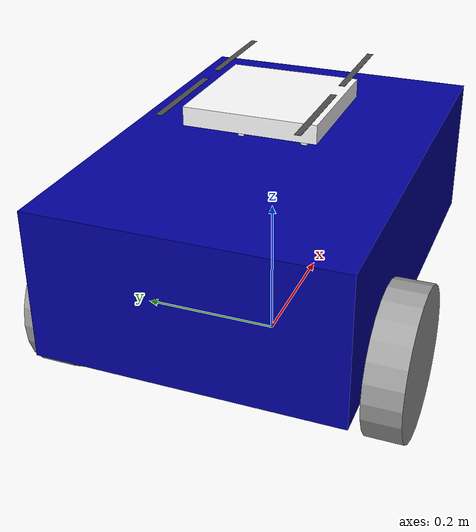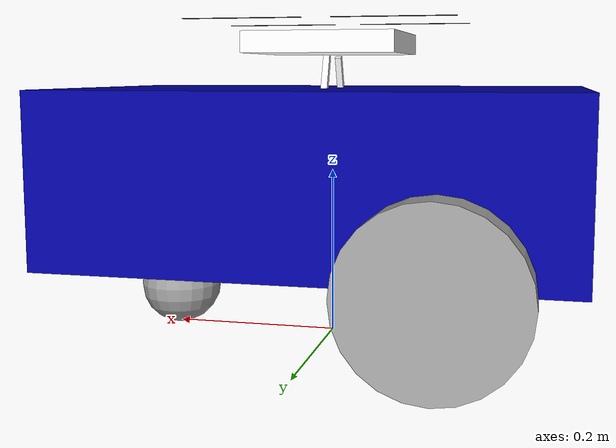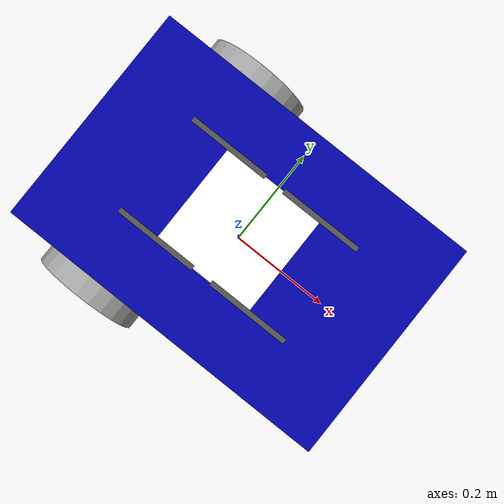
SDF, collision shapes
<?xml version="1.0"?>
<sdf version='1.9'>
  <model name='flight_robot'>

    <include merge='true'>
      <uri>model://x500_base</uri>
      <pose>0 0 0.35 0 0 0</pose>
    </include>

    <plugin filename="gz-sim-multicopter-motor-model-system" name="gz::sim::systems::MulticopterMotorModel">
      <jointName>rotor_0_joint</jointName>
      <linkName>rotor_0</linkName>
      <turningDirection>ccw</turningDirection>
      <timeConstantUp>0.0125</timeConstantUp>
      <timeConstantDown>0.025</timeConstantDown>
      <maxRotVelocity>1000.0</maxRotVelocity>
      <motorConstant>2.0e-05</motorConstant>
      <momentConstant>0.016</momentConstant>
      <commandSubTopic>command/motor_speed</commandSubTopic>
      <motorNumber>0</motorNumber>
      <rotorDragCoefficient>8.06428e-05</rotorDragCoefficient>
      <rollingMomentCoefficient>1e-06</rollingMomentCoefficient>
      <rotorVelocitySlowdownSim>10</rotorVelocitySlowdownSim>
      <motorType>velocity</motorType>
    </plugin>
    <plugin filename="gz-sim-multicopter-motor-model-system" name="gz::sim::systems::MulticopterMotorModel">
      <jointName>rotor_1_joint</jointName>
      <linkName>rotor_1</linkName>
      <turningDirection>ccw</turningDirection>
      <timeConstantUp>0.0125</timeConstantUp>
      <timeConstantDown>0.025</timeConstantDown>
      <maxRotVelocity>1000.0</maxRotVelocity>
      <motorConstant>2.0e-05</motorConstant>
      <momentConstant>0.016</momentConstant>
      <commandSubTopic>command/motor_speed</commandSubTopic>
      <motorNumber>1</motorNumber>
      <rotorDragCoefficient>8.06428e-05</rotorDragCoefficient>
      <rollingMomentCoefficient>1e-06</rollingMomentCoefficient>
      <rotorVelocitySlowdownSim>10</rotorVelocitySlowdownSim>
      <motorType>velocity</motorType>
    </plugin>
    <plugin filename="gz-sim-multicopter-motor-model-system" name="gz::sim::systems::MulticopterMotorModel">
      <jointName>rotor_2_joint</jointName>
      <linkName>rotor_2</linkName>
      <turningDirection>cw</turningDirection>
      <timeConstantUp>0.0125</timeConstantUp>
      <timeConstantDown>0.025</timeConstantDown>
      <maxRotVelocity>1000.0</maxRotVelocity>
      <motorConstant>2.0e-05</motorConstant>
      <momentConstant>0.016</momentConstant>
      <commandSubTopic>command/motor_speed</commandSubTopic>
      <motorNumber>2</motorNumber>
      <rotorDragCoefficient>8.06428e-05</rotorDragCoefficient>
      <rollingMomentCoefficient>1e-06</rollingMomentCoefficient>
      <rotorVelocitySlowdownSim>10</rotorVelocitySlowdownSim>
      <motorType>velocity</motorType>
    </plugin>
    <plugin filename="gz-sim-multicopter-motor-model-system" name="gz::sim::systems::MulticopterMotorModel">
      <jointName>rotor_3_joint</jointName>
      <linkName>rotor_3</linkName>
      <turningDirection>cw</turningDirection>
      <timeConstantUp>0.0125</timeConstantUp>
      <timeConstantDown>0.025</timeConstantDown>
      <maxRotVelocity>1000.0</maxRotVelocity>
      <motorConstant>2.0e-05</motorConstant>
      <momentConstant>0.016</momentConstant>
      <commandSubTopic>command/motor_speed</commandSubTopic>
      <motorNumber>3</motorNumber>
      <rotorDragCoefficient>8.06428e-05</rotorDragCoefficient>
      <rollingMomentCoefficient>1e-06</rollingMomentCoefficient>
      <rotorVelocitySlowdownSim>10</rotorVelocitySlowdownSim>
      <motorType>velocity</motorType>
    </plugin>

    <!-- Ground robot base: 1.0 kg keeps total system at 3.41 kg so the
         upgraded motors hover near 55-60% output. -->
    <link name='robot_base_footprint'>
      <inertial>
        <pose>0 0 0.1 0 0 0</pose>
        <mass>1.0</mass>
        <inertia>
          <ixx>0.0833</ixx>
          <ixy>0</ixy>
          <ixz>0</ixz>
          <iyy>0.0833</iyy>
          <iyz>0</iyz>
          <izz>0.125</izz>
        </inertia>
      </inertial>

      <collision name='base_collision'>
        <pose>0 0 0.2 0 0 0</pose>
        <geometry>
          <box>
            <size>0.6 0.4 0.2</size>
          </box>
        </geometry>
      </collision>

      <visual name='base_visual'>
        <pose>0 0 0.2 0 0 0</pose>
        <geometry>
          <box>
            <size>0.6 0.4 0.2</size>
          </box>
        </geometry>
        <material>
          <diffuse>0 0 0.625 1</diffuse>
          <ambient>0 0 0.625 1</ambient>
        </material>
      </visual>
    </link>

    <joint name='base_left_wheel_joint' type='revolute'>
      <pose relative_to='robot_base_footprint'>-0.15 0.225 0.1 0 0 0</pose>
      <parent>robot_base_footprint</parent>
      <child>left_wheel_link</child>
      <axis>
        <xyz>0 1 0</xyz>
        <limit>
          <lower>-inf</lower>
          <upper>inf</upper>
        </limit>
        <dynamics>
          <spring_reference>0</spring_reference>
          <spring_stiffness>0</spring_stiffness>
        </dynamics>
      </axis>
    </joint>

    <link name='left_wheel_link'>
      <pose relative_to='base_left_wheel_joint'>0 0 0 0 0 0</pose>
      <inertial>
        <pose>0 0 0 1.5707963267948959 0 0</pose>
        <mass>0.1</mass>
        <inertia>
          <ixx>0.010833333333333341</ixx>
          <ixy>0</ixy>
          <ixz>0</ixz>
          <iyy>0.010833333333333341</iyy>
          <iyz>0</iyz>
          <izz>0.02</izz>
        </inertia>
      </inertial>

      <collision name='left_wheel_link_collision'>
        <pose>0 0 0 1.5707963267948959 0 0</pose>
        <geometry>
          <cylinder>
            <length>0.05</length>
            <radius>0.1</radius>
          </cylinder>
        </geometry>
      </collision>

      <visual name='left_wheel_link_visual'>
        <pose>0 0 0 1.5707963267948959 0 0</pose>
        <geometry>
          <cylinder>
            <length>0.05</length>
            <radius>0.1</radius>
          </cylinder>
        </geometry>
        <material>
          <diffuse>0.625 0.625 0.625 1</diffuse>
          <ambient>0.625 0.625 0.625 1</ambient>
        </material>
      </visual>
    </link>

    <joint name='base_right_wheel_joint' type='revolute'>
      <pose relative_to='robot_base_footprint'>-0.15 -0.225 0.1 0 0 0</pose>
      <parent>robot_base_footprint</parent>
      <child>right_wheel_link</child>
      <axis>
        <xyz>0 1 0</xyz>
        <limit>
          <lower>-inf</lower>
          <upper>inf</upper>
        </limit>
        <dynamics>
          <spring_reference>0</spring_reference>
          <spring_stiffness>0</spring_stiffness>
        </dynamics>
      </axis>
    </joint>

    <link name='right_wheel_link'>
      <pose relative_to='base_right_wheel_joint'>0 0 0 0 0 0</pose>
      <inertial>
        <pose>0 0 0 1.5707963267948959 0 0</pose>
        <mass>0.1</mass>
        <inertia>
          <ixx>0.010833333333333341</ixx>
          <ixy>0</ixy>
          <ixz>0</ixz>
          <iyy>0.010833333333333341</iyy>
          <iyz>0</iyz>
          <izz>0.02</izz>
        </inertia>
      </inertial>

      <collision name='right_wheel_link_collision'>
        <pose>0 0 0 1.5707963267948959 0 0</pose>
        <geometry>
          <cylinder>
            <length>0.05</length>
            <radius>0.1</radius>
          </cylinder>
        </geometry>
      </collision>

      <visual name='right_wheel_link_visual'>
        <pose>0 0 0 1.5707963267948959 0 0</pose>
        <geometry>
          <cylinder>
            <length>0.05</length>
            <radius>0.1</radius>
          </cylinder>
        </geometry>
        <material>
          <diffuse>0.625 0.625 0.625 1</diffuse>
          <ambient>0.625 0.625 0.625 1</ambient>
        </material>
      </visual>
    </link>

    <joint name='base_caster_wheel_joint' type='fixed'>
      <pose relative_to='robot_base_footprint'>0.2 0 0.05 0 0 0</pose>
      <parent>robot_base_footprint</parent>
      <child>caster_wheel_link</child>
    </joint>

    <link name='caster_wheel_link'>
      <pose relative_to='base_caster_wheel_joint'>0 0 0 0 0 0</pose>
      <inertial>
        <pose>0 0 0 0 0 0</pose>
        <mass>0.15</mass>
        <inertia>
          <ixx>0.000125</ixx>
          <ixy>0</ixy>
          <ixz>0</ixz>
          <iyy>0.000125</iyy>
          <iyz>0</iyz>
          <izz>0.000125</izz>
        </inertia>
      </inertial>

      <collision name='caster_wheel_collision'>
        <geometry>
          <sphere>
            <radius>0.05</radius>
          </sphere>
        </geometry>
        <surface>
          <friction>
            <ode>
              <mu>0.1</mu>
              <mu2>0.1</mu2>
            </ode>
          </friction>
        </surface>
      </collision>

      <visual name='caster_wheel_visual'>
        <geometry>
          <sphere>
            <radius>0.05</radius>
          </sphere>
        </geometry>
        <material>
          <diffuse>0.625 0.625 0.625 1</diffuse>
          <ambient>0.625 0.625 0.625 1</ambient>
        </material>
      </visual>
    </link>

    <plugin name='gz::sim::systems::DiffDrive' filename='gz-sim-diff-drive-system'>
      <update_rate>50</update_rate>
      <left_joint>base_left_wheel_joint</left_joint>
      <right_joint>base_right_wheel_joint</right_joint>
      <wheel_separation>0.45</wheel_separation>
      <wheel_radius>0.1</wheel_radius>
      <odom_topic>odom</odom_topic>
      <frame_id>odom</frame_id>
      <child_frame_id>robot_base_footprint</child_frame_id>
    </plugin>

    <plugin name='gz::sim::systems::JointStatePublisher' filename='gz-sim-joint-state-publisher-system'>
      <joint_name>base_left_wheel_joint</joint_name>
      <joint_name>base_right_wheel_joint</joint_name>
    </plugin>

    <joint name="robot_to_drone_joint" type="fixed">
      <pose relative_to='robot_base_footprint'>0 0 0.35 0 0 0</pose>
      <parent>robot_base_footprint</parent>
      <child>base_link</child>
    </joint>

  </model>
</sdf>

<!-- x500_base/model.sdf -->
<sdf version='1.9'>
  <model name='x500_base'>
    <pose>0 0 0.12 0 0 0</pose>
    <self_collide>false</self_collide>
    <static>false</static>
    <link name="base_link">
      <inertial>
        <mass>1.0</mass>
        <inertia>
          <ixx>0.005416666666666667</ixx>
          <ixy>0</ixy>
          <ixz>0</ixz>
          <iyy>0.005416666666666667</iyy>
          <iyz>0</iyz>
          <izz>0.010000000000000002</izz>
        </inertia>
      </inertial>
      <gravity>true</gravity>
      <velocity_decay/>
      <visual name="base_link_visual">
        <pose>0 0 0.0125 0 0 3.141592654</pose>
        <geometry>
          <mesh>
            <scale>0.5 0.5 0.5</scale>
            <uri>model://x500_base/meshes/NXP-HGD-CF.dae</uri>
          </mesh>
        </geometry>
      </visual>
      <visual name="5010_motor_base_0">
        <pose>0.087 0.087 0.016 0 0 -0.45</pose>
        <geometry>
          <mesh>
            <scale>0.5 0.5 0.5</scale>
            <uri>model://x500_base/meshes/5010Base.dae</uri>
          </mesh>
        </geometry>
      </visual>
      <visual name="5010_motor_base_1">
        <pose>-0.087 0.087 0.016 0 0 -0.45</pose>
        <geometry>
          <mesh>
            <scale>0.5 0.5 0.5</scale>
            <uri>model://x500_base/meshes/5010Base.dae</uri>
          </mesh>
        </geometry>
      </visual>
      <visual name="5010_motor_base_2">
        <pose>0.087 -0.087 0.016 0 0 -0.45</pose>
        <geometry>
          <mesh>
            <scale>0.5 0.5 0.5</scale>
            <uri>model://x500_base/meshes/5010Base.dae</uri>
          </mesh>
        </geometry>
      </visual>
      <visual name="5010_motor_base_3">
        <pose>-0.087 -0.087 0.016 0 0 -0.45</pose>
        <geometry>
          <mesh>
            <scale>0.5 0.5 0.5</scale>
            <uri>model://x500_base/meshes/5010Base.dae</uri>
          </mesh>
        </geometry>
      </visual>
      <visual name="NXP_FMUK66_FRONT">
        <pose>0.0235 0.0005 0.0215 1 0 1.57</pose>
        <cast_shadows>false</cast_shadows>
        <geometry>
          <plane>
            <normal>0 0 1</normal>
            <size>0.0065 0.0035</size>
          </plane>
        </geometry>
        <material>
          <diffuse>1.0 1.0 1.0</diffuse>
          <specular>1.0 1.0 1.0</specular>
          <pbr>
            <metal>
              <albedo_map>model://x500_base/materials/textures/nxp.png</albedo_map>
            </metal>
          </pbr>
        </material>
      </visual>
      <visual name="NXP_FMUK66_TOP">
        <pose>-0.0115 0 0.02575 0 0 -1.57</pose>
        <cast_shadows>false</cast_shadows>
        <geometry>
          <plane>
            <normal>0 0 1</normal>
            <size>0.0065 0.0035</size>
          </plane>
        </geometry>
        <material>
          <diffuse>1.0 1.0 1.0</diffuse>
          <specular>1.0 1.0 1.0</specular>
          <pbr>
            <metal>
              <albedo_map>model://x500_base/materials/textures/nxp.png</albedo_map>
            </metal>
          </pbr>
        </material>
      </visual>
      <visual name="RDDRONE_FMUK66_TOP">
        <pose>-0.015 0 0.02575 0 0 -1.57</pose>
        <cast_shadows>false</cast_shadows>
        <geometry>
          <plane>
            <normal>0 0 1</normal>
            <size>0.016 0.0017</size>
          </plane>
        </geometry>
        <material>
          <diffuse>1.0 1.0 1.0</diffuse>
          <specular>1.0 1.0 1.0</specular>
          <pbr>
            <metal>
              <albedo_map>model://x500_base/materials/textures/rd.png</albedo_map>
            </metal>
          </pbr>
        </material>
      </visual>
      <collision name="base_link_collision_0">
        <pose>0 0 0.0035 0 0 0</pose>
        <geometry>
          <box>
            <size>0.17677669529663686 0.17677669529663686 0.025</size>
          </box>
        </geometry>
        <surface>
          <contact>
            <ode>
              <min_depth>0.001</min_depth>
              <max_vel>0</max_vel>
            </ode>
          </contact>
          <friction>
            <ode/>
          </friction>
        </surface>
      </collision>
      <collision name="base_link_collision_1">
        <pose>0 -0.049 -0.0615 -0.35 0 0</pose>
        <geometry>
          <box>
            <size>0.0075 0.0075 0.105</size>
          </box>
        </geometry>
        <surface>
          <contact>
            <ode>
              <min_depth>0.001</min_depth>
              <max_vel>0</max_vel>
            </ode>
          </contact>
          <friction>
            <ode/>
          </friction>
        </surface>
      </collision>
      <collision name="base_link_collision_2">
        <pose>0 0.049 -0.0615 0.35 0 0</pose>
        <geometry>
          <box>
            <size>0.0075 0.0075 0.105</size>
          </box>
        </geometry>
        <surface>
          <contact>
            <ode>
              <min_depth>0.001</min_depth>
              <max_vel>0</max_vel>
            </ode>
          </contact>
          <friction>
            <ode/>
          </friction>
        </surface>
      </collision>
      <collision name="base_link_collision_3">
        <pose>0 -0.066 -0.10975 0 0 0</pose>
        <geometry>
          <box>
            <size>0.125 0.0075 0.0075</size>
          </box>
        </geometry>
        <surface>
          <contact>
            <ode>
              <min_depth>0.001</min_depth>
              <max_vel>0</max_vel>
            </ode>
          </contact>
          <friction>
            <ode/>
          </friction>
        </surface>
      </collision>
      <collision name="base_link_collision_4">
        <pose>0 0.066 -0.10975 0 0 0</pose>
        <geometry>
          <box>
            <size>0.125 0.0075 0.0075</size>
          </box>
        </geometry>
        <surface>
          <contact>
            <ode>
              <min_depth>0.001</min_depth>
              <max_vel>0</max_vel>
            </ode>
          </contact>
          <friction>
            <ode/>
          </friction>
        </surface>
      </collision>
      <sensor name="air_pressure_sensor" type="air_pressure">
        <always_on>1</always_on>
        <update_rate>50</update_rate>
        <air_pressure>
          <pressure>
            <noise type="gaussian">
              <mean>0</mean>
              <stddev>0.01</stddev>
            </noise>
          </pressure>
        </air_pressure>
      </sensor>
      <sensor name="imu_sensor" type="imu">
        <always_on>1</always_on>
        <update_rate>250</update_rate>
        <imu>
          <angular_velocity>
            <x>
              <noise type="gaussian">
                <mean>0</mean>
                <stddev>0.00018665</stddev>
                <dynamic_bias_stddev>3.8785e-05</dynamic_bias_stddev>
                <dynamic_bias_correlation_time>1000</dynamic_bias_correlation_time>
              </noise>
            </x>
            <y>
              <noise type="gaussian">
                <mean>0</mean>
                <stddev>0.00018665</stddev>
                <dynamic_bias_stddev>3.8785e-05</dynamic_bias_stddev>
                <dynamic_bias_correlation_time>1000</dynamic_bias_correlation_time>
              </noise>
            </y>
            <z>
              <noise type="gaussian">
                <mean>0</mean>
                <stddev>0.00018665</stddev>
                <dynamic_bias_stddev>3.8785e-05</dynamic_bias_stddev>
                <dynamic_bias_correlation_time>1000</dynamic_bias_correlation_time>
              </noise>
            </z>
          </angular_velocity>
          <linear_acceleration>
            <x>
              <noise type="gaussian">
                <mean>0</mean>
                <stddev>0.00186</stddev>
                <dynamic_bias_stddev>0.006</dynamic_bias_stddev>
                <dynamic_bias_correlation_time>300</dynamic_bias_correlation_time>
              </noise>
            </x>
            <y>
              <noise type="gaussian">
                <mean>0</mean>
                <stddev>0.00186</stddev>
                <dynamic_bias_stddev>0.006</dynamic_bias_stddev>
                <dynamic_bias_correlation_time>300</dynamic_bias_correlation_time>
              </noise>
            </y>
            <z>
              <noise type="gaussian">
                <mean>0</mean>
                <stddev>0.00186</stddev>
                <dynamic_bias_stddev>0.006</dynamic_bias_stddev>
                <dynamic_bias_correlation_time>300</dynamic_bias_correlation_time>
              </noise>
            </z>
          </linear_acceleration>
        </imu>
      </sensor>
      <sensor name="navsat_sensor" type="navsat">
        <always_on>1</always_on>
        <update_rate>30</update_rate>
      </sensor>
    </link>
    <link name="rotor_0">
      <gravity>true</gravity>
      <self_collide>false</self_collide>
      <velocity_decay/>
      <pose>0.087 -0.087 0.03 0 0 0</pose>
      <inertial>
          <mass>0.008038461538461538</mass>
          <inertia>
            <ixx>9.616227620998331e-08</ixx>
            <iyy>6.528962922925001e-06</iyy>
            <izz>6.62464558678501e-06</izz>
          </inertia>
        </inertial>
      <visual name="rotor_0_visual">
        <pose>-0.011 -0.07319230769230769 -0.008 0 0 0</pose>
        <geometry>
          <mesh>
            <scale>0.4230769230769231 0.4230769230769231 0.4230769230769231</scale>
            <uri>model://x500_base/meshes/1345_prop_ccw.stl</uri>
          </mesh>
        </geometry>
        <material>
          <script>
            <name>Gazebo/DarkGrey</name>
            <uri>file://media/materials/scripts/gazebo.material</uri>
          </script>
        </material>
      </visual>
      <visual name="rotor_0_visual_motor_bell">
        <pose>0 0 -0.016 0 0 0</pose>
        <geometry>
          <mesh>
            <scale>0.5 0.5 0.5</scale>
            <uri>model://x500_base/meshes/5010Bell.dae</uri>
          </mesh>
        </geometry>
      </visual>
      <collision name="rotor_0_collision">
        <pose>0 0 0 0 0 0 </pose>
        <geometry>
          <box>
            <size>0.1396153846153846 0.008461538461538461 0.0004230769230769231</size>
          </box>
        </geometry>
        <surface>
          <contact>
            <ode>
              <min_depth>0.001</min_depth>
              <max_vel>0</max_vel>
            </ode>
          </contact>
          <friction>
            <ode/>
          </friction>
        </surface>
      </collision>
    </link>
    <joint name="rotor_0_joint" type="revolute">
      <parent>base_link</parent>
      <child>rotor_0</child>
      <axis>
        <xyz>0 0 1</xyz>
        <limit>
          <lower>-1e+16</lower>
          <upper>1e+16</upper>
        </limit>
        <dynamics>
          <spring_reference>0</spring_reference>
          <spring_stiffness>0</spring_stiffness>
        </dynamics>
      </axis>
    </joint>
    <link name="rotor_1">
      <gravity>true</gravity>
      <self_collide>false</self_collide>
      <velocity_decay/>
      <pose>-0.087 0.087 0.03 0 0 0</pose>
      <inertial>
          <mass>0.008038461538461538</mass>
          <inertia>
            <ixx>9.616227620998331e-08</ixx>
            <iyy>6.528962922925001e-06</iyy>
            <izz>6.62464558678501e-06</izz>
          </inertia>
        </inertial>
      <visual name="rotor_1_visual">
        <pose>-0.011 -0.07319230769230769 -0.008 0 0 0</pose>
        <geometry>
          <mesh>
            <scale>0.4230769230769231 0.4230769230769231 0.4230769230769231</scale>
            <uri>model://x500_base/meshes/1345_prop_ccw.stl</uri>
          </mesh>
        </geometry>
        <material>
          <script>
            <name>Gazebo/DarkGrey</name>
            <uri>file://media/materials/scripts/gazebo.material</uri>
          </script>
        </material>
      </visual>
      <visual name="rotor_1_visual_motor_top">
        <pose>0 0 -0.016 0 0 0</pose>
        <geometry>
          <mesh>
            <scale>0.5 0.5 0.5</scale>
            <uri>model://x500_base/meshes/5010Bell.dae</uri>
          </mesh>
        </geometry>
      </visual>
      <collision name="rotor_1_collision">
        <pose>0 0 0 0 0 0 </pose>
        <geometry>
          <box>
            <size>0.1396153846153846 0.008461538461538461 0.0004230769230769231</size>
          </box>
        </geometry>
        <surface>
          <contact>
            <ode>
              <min_depth>0.001</min_depth>
              <max_vel>0</max_vel>
            </ode>
          </contact>
          <friction>
            <ode/>
          </friction>
        </surface>
      </collision>
    </link>
    <joint name="rotor_1_joint" type="revolute">
      <parent>base_link</parent>
      <child>rotor_1</child>
      <axis>
        <xyz>0 0 1</xyz>
        <limit>
          <lower>-1e+16</lower>
          <upper>1e+16</upper>
        </limit>
        <dynamics>
          <spring_reference>0</spring_reference>
          <spring_stiffness>0</spring_stiffness>
        </dynamics>
      </axis>
    </joint>
    <link name="rotor_2">
      <gravity>true</gravity>
      <self_collide>false</self_collide>
      <velocity_decay/>
      <pose>0.087 0.087 0.03 0 0 0</pose>
      <inertial>
          <mass>0.008038461538461538</mass>
          <inertia>
            <ixx>9.616227620998331e-08</ixx>
            <iyy>6.528962922925001e-06</iyy>
            <izz>6.62464558678501e-06</izz>
          </inertia>
        </inertial>
      <visual name="rotor_2_visual">
        <pose>-0.011 -0.07319230769230769 -0.008 0 0 0</pose>
        <geometry>
          <mesh>
            <scale>0.4230769230769231 0.4230769230769231 0.4230769230769231</scale>
            <uri>model://x500_base/meshes/1345_prop_cw.stl</uri>
          </mesh>
        </geometry>
        <material>
          <script>
            <name>Gazebo/DarkGrey</name>
            <uri>file://media/materials/scripts/gazebo.material</uri>
          </script>
        </material>
      </visual>
      <visual name="rotor_2_visual_motor_top">
        <pose>0 0 -0.016 0 0 0</pose>
        <geometry>
          <mesh>
            <scale>0.5 0.5 0.5</scale>
            <uri>model://x500_base/meshes/5010Bell.dae</uri>
          </mesh>
        </geometry>
      </visual>
      <collision name="rotor_2_collision">
        <pose>0 0 0 0 0 0 </pose>
        <geometry>
          <box>
            <size>0.1396153846153846 0.008461538461538461 0.0004230769230769231</size>
          </box>
        </geometry>
        <surface>
          <contact>
            <ode>
              <min_depth>0.001</min_depth>
              <max_vel>0</max_vel>
            </ode>
          </contact>
          <friction>
            <ode/>
          </friction>
        </surface>
      </collision>
    </link>
    <joint name="rotor_2_joint" type="revolute">
      <parent>base_link</parent>
      <child>rotor_2</child>
      <axis>
        <xyz>0 0 1</xyz>
        <limit>
          <lower>-1e+16</lower>
          <upper>1e+16</upper>
        </limit>
        <dynamics>
          <spring_reference>0</spring_reference>
          <spring_stiffness>0</spring_stiffness>
        </dynamics>
      </axis>
    </joint>
    <link name="rotor_3">
      <gravity>true</gravity>
      <self_collide>false</self_collide>
      <velocity_decay/>
      <pose>-0.087 -0.087 0.03 0 0 0</pose>
      <inertial>
          <mass>0.008038461538461538</mass>
          <inertia>
            <ixx>9.616227620998331e-08</ixx>
            <iyy>6.528962922925001e-06</iyy>
            <izz>6.62464558678501e-06</izz>
          </inertia>
        </inertial>
      <visual name="rotor_3_visual">
        <pose>-0.011 -0.07319230769230769 -0.008 0 0 0</pose>
        <geometry>
          <mesh>
            <scale>0.4230769230769231 0.4230769230769231 0.4230769230769231</scale>
            <uri>model://x500_base/meshes/1345_prop_cw.stl</uri>
          </mesh>
        </geometry>
        <material>
          <script>
            <name>Gazebo/DarkGrey</name>
            <uri>file://media/materials/scripts/gazebo.material</uri>
          </script>
        </material>
      </visual>
      <visual name="rotor_3_visual_motor_top">
        <pose>0 0 -0.016 0 0 0</pose>
        <geometry>
          <mesh>
            <scale>0.5 0.5 0.5</scale>
            <uri>model://x500_base/meshes/5010Bell.dae</uri>
          </mesh>
        </geometry>
      </visual>
      <collision name="rotor_3_collision">
        <pose>0 0 0 0 0 0 </pose>
        <geometry>
          <box>
            <size>0.1396153846153846 0.008461538461538461 0.0004230769230769231</size>
          </box>
        </geometry>
        <surface>
          <contact>
            <ode>
              <min_depth>0.001</min_depth>
              <max_vel>0</max_vel>
            </ode>
          </contact>
          <friction>
            <ode/>
          </friction>
        </surface>
      </collision>
    </link>
    <joint name="rotor_3_joint" type="revolute">
      <parent>base_link</parent>
      <child>rotor_3</child>
      <axis>
        <xyz>0 0 1</xyz>
        <limit>
          <lower>-1e+16</lower>
          <upper>1e+16</upper>
        </limit>
        <dynamics>
          <spring_reference>0</spring_reference>
          <spring_stiffness>0</spring_stiffness>
        </dynamics>
      </axis>
    </joint>
  </model>
</sdf>
